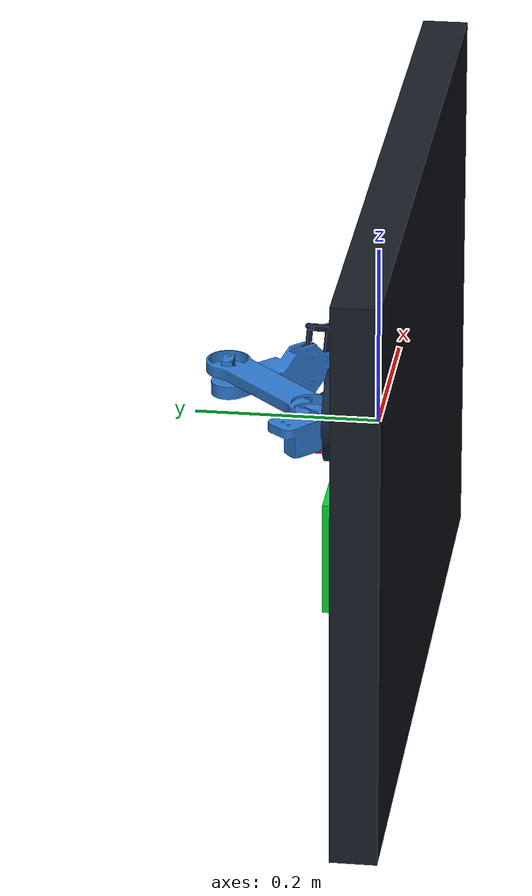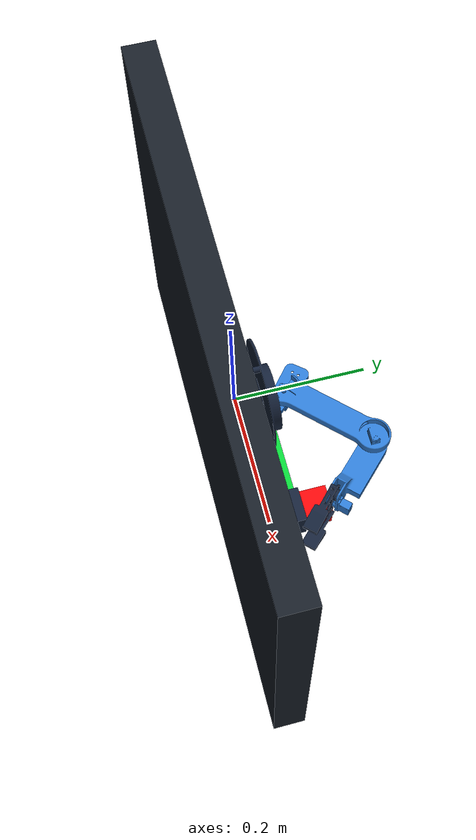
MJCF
<?xml version="1.0" encoding="utf-8"?>
<mujoco model="mext-simulation-demo">
  <compiler angle="radian" meshdir="meshes" autolimits="true" balanceinertia="true" />
  <option timestep="0.01" gravity="0 -9.81 0" />
  <visual>
    <global offwidth="1280" offheight="720" />
    <quality shadowsize="4096" />
    <headlight ambient="0.35 0.35 0.35" diffuse="0.75 0.75 0.75" specular="0.25 0.25 0.25" />
  </visual>
  <statistic center="0.03 0.08 0" extent="0.55" />

  <asset>
    <mesh name="fixed_base" file="fixed_base.stl" scale="1 1 1" inertia="convex" />
    <mesh name="turntable" file="turntable.stl" scale="1 1 1" inertia="convex" />
    <mesh name="upper_arm" file="upper_arm.stl" scale="1 1 1" inertia="convex" />
    <mesh name="forearm" file="forearm.stl" scale="1 1 1" inertia="convex" />
    <mesh name="gripper_fixed" file="gripper_fixed.stl" scale="1 1 1" inertia="convex" />
    <mesh name="gripper_mirror" file="gripper_mirror.stl" scale="1 1 1" inertia="convex" />
    <mesh name="gripper_primary" file="gripper_primary.stl" scale="1 1 1" inertia="convex" />
    <texture name="table_texture" type="2d" builtin="checker" rgb1="0.07 0.09 0.12" rgb2="0.11 0.14 0.18" width="512" height="512" />
    <material name="table" texture="table_texture" texrepeat="5 5" reflectance="0.08" />
    <material name="robot" rgba="0.18 0.48 0.82 1" metallic="0.2" roughness="0.45" />
    <material name="robot_dark" rgba="0.08 0.13 0.22 1" metallic="0.15" roughness="0.5" />
    <material name="red_cube" rgba="0.95 0.03 0.04 1" metallic="0.05" roughness="0.32" />
    <material name="green_platform" rgba="0.03 0.82 0.22 1" metallic="0.05" roughness="0.38" />
  </asset>

  <worldbody>
    <light name="key" directional="false" pos="0.15 0.75 0.35" dir="-0.15 -1 -0.35" diffuse="1 0.96 0.9" castshadow="true" />
    <light name="fill" directional="false" pos="-0.45 0.35 -0.35" dir="0.5 -0.4 0.4" diffuse="0.35 0.48 0.7" castshadow="false" />
    <geom name="demo_table" type="box" pos="0 -0.025 0" size="0.42 0.025 0.31" material="table" contype="1" conaffinity="1" />

    <body name="workspace_center" pos="0.09 0.10 -0.11" />
    <camera name="overview" mode="targetbody" target="workspace_center" pos="0.48 0.40 0.48" fovy="48" />

    <body name="green_platform" pos="0.066008 0.048177 -0.165455">
      <geom name="green_platform_geom" type="box" size="0.075 0.012 0.065" material="green_platform" contype="1" conaffinity="1" />
      <geom name="green_platform_support" type="box" pos="0 -0.0300885 0" size="0.05 0.0180885 0.04" material="robot_dark" contype="0" conaffinity="0" />
    </body>
    <body name="red_cube_support" pos="0.161551 0.030588 -0.086472">
      <geom name="red_cube_support_geom" type="box" size="0.026 0.030588 0.026" material="robot_dark" contype="0" conaffinity="0" />
    </body>
    <body name="red_cube" mocap="true" pos="0.161551 0.081177 -0.086472">
      <geom name="red_cube_geom" type="box" size="0.021 0.021 0.021" material="red_cube" contype="0" conaffinity="0" />
    </body>

    <body name="fixed_base">
      <geom name="fixed_base_mesh" type="mesh" mesh="fixed_base" material="robot_dark" contype="0" conaffinity="0" />
      <body name="turntable" pos="0.00965 0.047349999914 -3.30779244597e-16">
        <joint name="J1_BASE_YAW" type="hinge" axis="0 1 0" limited="false" />
        <geom name="turntable_mesh" type="mesh" mesh="turntable" material="robot" contype="0" conaffinity="0" />
        <body name="upper_arm" pos="-0.00353585011008 0.0266398001168 -0.0054">
          <joint name="J2_SHOULDER" type="hinge" axis="0 0 1" limited="false" />
          <geom name="upper_arm_mesh" type="mesh" mesh="upper_arm" material="robot" contype="0" conaffinity="0" />
          <body name="forearm" pos="0.111466017178 0.106466017178 -0.00535">
            <geom name="forearm_mesh" type="mesh" mesh="forearm" material="robot" contype="0" conaffinity="0" />
            <geom name="gripper_fixed_mesh" type="mesh" mesh="gripper_fixed" material="robot_dark" contype="0" conaffinity="0" />
            <site name="gripper_center" pos="0.0632579918849 -0.0782792371111 -0.02455" size="0.003" rgba="0 1 1 0" />
            <camera name="arm_pov" mode="targetbody" target="workspace_center" pos="0.105 0.10 0" fovy="72" />
            <body name="gripper_primary" pos="0.0632579918849 -0.0782792371111 -0.02455">
              <joint name="J3_GRIPPER" type="hinge" axis="0.708318205351 0.70589327803 0" limited="false" />
              <geom name="gripper_primary_mesh" type="mesh" mesh="gripper_primary" material="robot_dark" contype="0" conaffinity="0" />
            </body>
            <body name="gripper_mirror" pos="0.0667289935838 -0.0746789389004 0.005">
              <joint name="J3_GRIPPER_MIRROR" type="hinge" axis="0.708318205351 0.70589327803 0" limited="false" />
              <geom name="gripper_mirror_mesh" type="mesh" mesh="gripper_mirror" material="robot_dark" contype="0" conaffinity="0" />
            </body>
          </body>
        </body>
      </body>
    </body>
  </worldbody>

  <equality>
    <joint name="J3_GRIPPER_GEAR_COUPLING" joint1="J3_GRIPPER" joint2="J3_GRIPPER_MIRROR" polycoef="0 -1 0 0 0" />
  </equality>
</mujoco>
